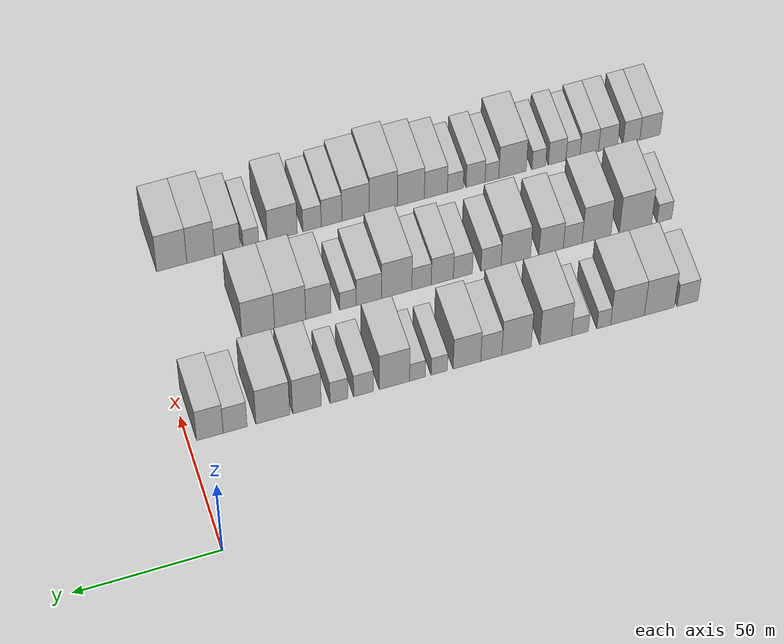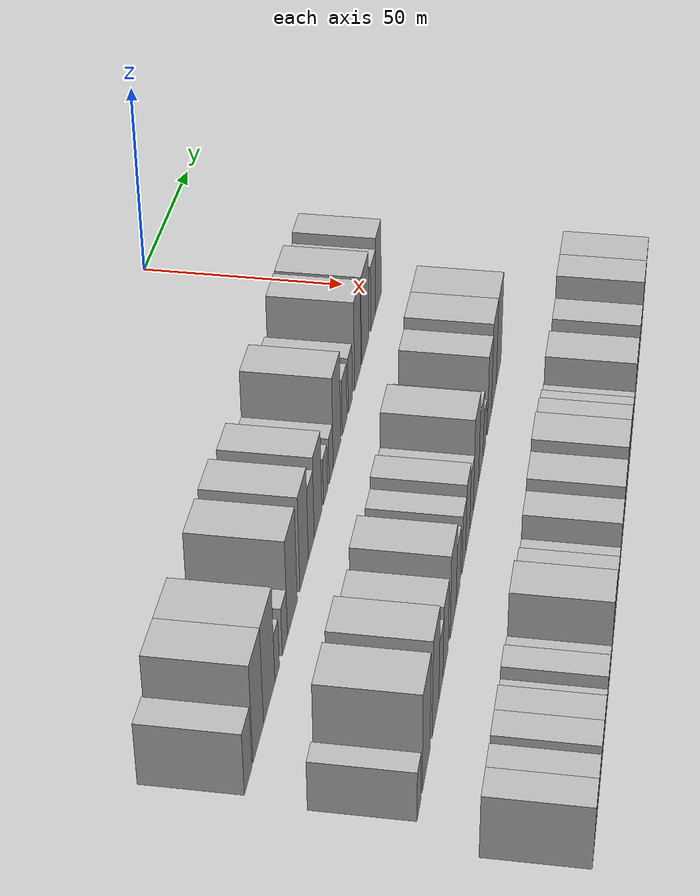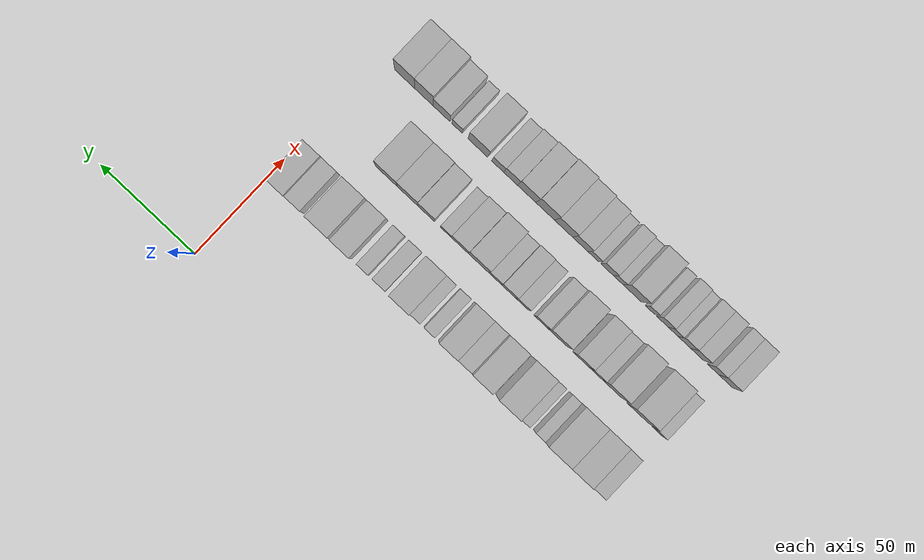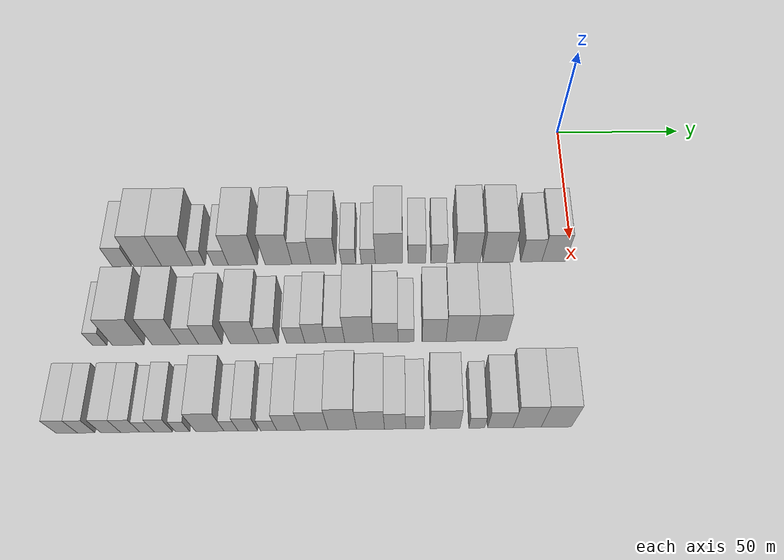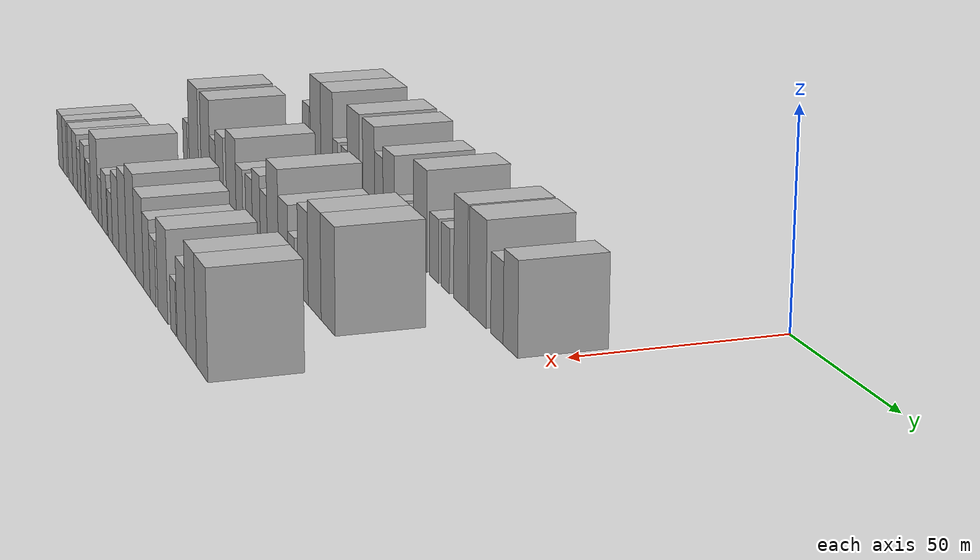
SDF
<sdf version="1.6">
 <world name="default">
  <model name="building_21">
   <static>1</static>
   <pose>50.0000 -172.4072 0 0.000000 0.000000 0.000000</pose>
   <link name="link">
    <pose>0 0 7.50 0 0 0</pose>
    <collision name="collision"><geometry><box><size>20.0000 7.2296 15.0000</size></box></geometry></collision>
    <visual name="visual">
     <cast_shadows>0</cast_shadows>
     <geometry><box><size>20.0000 7.2296 15.0000</size></box></geometry>
     <material>
      <script>
       <uri>model://HANNAS_wall/materials/scripts</uri>
       <uri>model://HANNAS_wall/materials/textures</uri>
       <name>vrc/HANNAS_wall</name>
      </script>
     </material>
    </visual>
   </link>
  </model>
  <model name="building_22">
   <static>1</static>
   <pose>50.0000 -162.5162 0 0.000000 0.000000 0.000000</pose>
   <link name="link">
    <pose>0 0 12.00 0 0 0</pose>
    <collision name="collision"><geometry><box><size>20.0000 10.5525 24.0000</size></box></geometry></collision>
    <visual name="visual">
     <cast_shadows>0</cast_shadows>
     <geometry><box><size>20.0000 10.5525 24.0000</size></box></geometry>
     <material>
      <script>
       <uri>model://HANNAS_wall/materials/scripts</uri>
       <uri>model://HANNAS_wall/materials/textures</uri>
       <name>vrc/HANNAS_wall</name>
      </script>
     </material>
    </visual>
   </link>
  </model>
  <model name="building_23">
   <static>1</static>
   <pose>50.0000 -151.3378 0 0.000000 0.000000 0.000000</pose>
   <link name="link">
    <pose>0 0 12.00 0 0 0</pose>
    <collision name="collision"><geometry><box><size>20.0000 11.8043 24.0000</size></box></geometry></collision>
    <visual name="visual">
     <cast_shadows>0</cast_shadows>
     <geometry><box><size>20.0000 11.8043 24.0000</size></box></geometry>
     <material>
      <script>
       <uri>model://HANNAS_wall/materials/scripts</uri>
       <uri>model://HANNAS_wall/materials/textures</uri>
       <name>vrc/HANNAS_wall</name>
      </script>
     </material>
    </visual>
   </link>
  </model>
  <model name="building_24">
   <static>1</static>
   <pose>50.0000 -143.0119 0 0.000000 0.000000 0.000000</pose>
   <link name="link">
    <pose>0 0 6.00 0 0 0</pose>
    <collision name="collision"><geometry><box><size>20.0000 4.8476 12.0000</size></box></geometry></collision>
    <visual name="visual">
     <cast_shadows>0</cast_shadows>
     <geometry><box><size>20.0000 4.8476 12.0000</size></box></geometry>
     <material>
      <script>
       <uri>model://HANNAS_wall/materials/scripts</uri>
       <uri>model://HANNAS_wall/materials/textures</uri>
       <name>vrc/HANNAS_wall</name>
      </script>
     </material>
    </visual>
   </link>
  </model>
  <model name="building_25">
   <static>1</static>
   <pose>50.0000 -134.6593 0 0.000000 0.000000 0.000000</pose>
   <link name="link">
    <pose>0 0 6.00 0 0 0</pose>
    <collision name="collision"><geometry><box><size>20.0000 5.8576 12.0000</size></box></geometry></collision>
    <visual name="visual">
     <cast_shadows>0</cast_shadows>
     <geometry><box><size>20.0000 5.8576 12.0000</size></box></geometry>
     <material>
      <script>
       <uri>model://HANNAS_wall/materials/scripts</uri>
       <uri>model://HANNAS_wall/materials/textures</uri>
       <name>vrc/HANNAS_wall</name>
      </script>
     </material>
    </visual>
   </link>
  </model>
  <model name="building_26">
   <static>1</static>
   <pose>50.0000 -126.2061 0 0.000000 0.000000 0.000000</pose>
   <link name="link">
    <pose>0 0 12.00 0 0 0</pose>
    <collision name="collision"><geometry><box><size>20.0000 11.0488 24.0000</size></box></geometry></collision>
    <visual name="visual">
     <cast_shadows>0</cast_shadows>
     <geometry><box><size>20.0000 11.0488 24.0000</size></box></geometry>
     <material>
      <script>
       <uri>model://HANNAS_wall/materials/scripts</uri>
       <uri>model://HANNAS_wall/materials/textures</uri>
       <name>vrc/HANNAS_wall</name>
      </script>
     </material>
    </visual>
   </link>
  </model>
  <model name="building_27">
   <static>1</static>
   <pose>50.0000 -112.5648 0 0.000000 0.000000 0.000000</pose>
   <link name="link">
    <pose>0 0 12.00 0 0 0</pose>
    <collision name="collision"><geometry><box><size>20.0000 10.2338 24.0000</size></box></geometry></collision>
    <visual name="visual">
     <cast_shadows>0</cast_shadows>
     <geometry><box><size>20.0000 10.2338 24.0000</size></box></geometry>
     <material>
      <script>
       <uri>model://HANNAS_wall/materials/scripts</uri>
       <uri>model://HANNAS_wall/materials/textures</uri>
       <name>vrc/HANNAS_wall</name>
      </script>
     </material>
    </visual>
   </link>
  </model>
  <model name="building_28">
   <static>1</static>
   <pose>50.0000 -103.8133 0 0.000000 0.000000 0.000000</pose>
   <link name="link">
    <pose>0 0 9.00 0 0 0</pose>
    <collision name="collision"><geometry><box><size>20.0000 7.2692 18.0000</size></box></geometry></collision>
    <visual name="visual">
     <cast_shadows>0</cast_shadows>
     <geometry><box><size>20.0000 7.2692 18.0000</size></box></geometry>
     <material>
      <script>
       <uri>model://HANNAS_wall/materials/scripts</uri>
       <uri>model://HANNAS_wall/materials/textures</uri>
       <name>vrc/HANNAS_wall</name>
      </script>
     </material>
    </visual>
   </link>
  </model>
  <model name="building_29">
   <static>1</static>
   <pose>50.0000 -95.3937 0 0.000000 0.000000 0.000000</pose>
   <link name="link">
    <pose>0 0 10.50 0 0 0</pose>
    <collision name="collision"><geometry><box><size>20.0000 9.5701 21.0000</size></box></geometry></collision>
    <visual name="visual">
     <cast_shadows>0</cast_shadows>
     <geometry><box><size>20.0000 9.5701 21.0000</size></box></geometry>
     <material>
      <script>
       <uri>model://HANNAS_wall/materials/scripts</uri>
       <uri>model://HANNAS_wall/materials/textures</uri>
       <name>vrc/HANNAS_wall</name>
      </script>
     </material>
    </visual>
   </link>
  </model>
  <model name="building_30">
   <static>1</static>
   <pose>50.0000 -85.7997 0 0.000000 0.000000 0.000000</pose>
   <link name="link">
    <pose>0 0 6.00 0 0 0</pose>
    <collision name="collision"><geometry><box><size>20.0000 5.6180 12.0000</size></box></geometry></collision>
    <visual name="visual">
     <cast_shadows>0</cast_shadows>
     <geometry><box><size>20.0000 5.6180 12.0000</size></box></geometry>
     <material>
      <script>
       <uri>model://HANNAS_wall/materials/scripts</uri>
       <uri>model://HANNAS_wall/materials/textures</uri>
       <name>vrc/HANNAS_wall</name>
      </script>
     </material>
    </visual>
   </link>
  </model>
  <model name="building_31">
   <static>1</static>
   <pose>50.0000 -78.2784 0 0.000000 0.000000 0.000000</pose>
   <link name="link">
    <pose>0 0 6.00 0 0 0</pose>
    <collision name="collision"><geometry><box><size>20.0000 5.4245 12.0000</size></box></geometry></collision>
    <visual name="visual">
     <cast_shadows>0</cast_shadows>
     <geometry><box><size>20.0000 5.4245 12.0000</size></box></geometry>
     <material>
      <script>
       <uri>model://HANNAS_wall/materials/scripts</uri>
       <uri>model://HANNAS_wall/materials/textures</uri>
       <name>vrc/HANNAS_wall</name>
      </script>
     </material>
    </visual>
   </link>
  </model>
  <model name="building_32">
   <static>1</static>
   <pose>50.0000 -70.3503 0 0.000000 0.000000 0.000000</pose>
   <link name="link">
    <pose>0 0 12.00 0 0 0</pose>
    <collision name="collision"><geometry><box><size>20.0000 10.4315 24.0000</size></box></geometry></collision>
    <visual name="visual">
     <cast_shadows>0</cast_shadows>
     <geometry><box><size>20.0000 10.4315 24.0000</size></box></geometry>
     <material>
      <script>
       <uri>model://HANNAS_wall/materials/scripts</uri>
       <uri>model://HANNAS_wall/materials/textures</uri>
       <name>vrc/HANNAS_wall</name>
      </script>
     </material>
    </visual>
   </link>
  </model>
  <model name="building_33">
   <static>1</static>
   <pose>50.0000 -59.7436 0 0.000000 0.000000 0.000000</pose>
   <link name="link">
    <pose>0 0 7.50 0 0 0</pose>
    <collision name="collision"><geometry><box><size>20.0000 6.7820 15.0000</size></box></geometry></collision>
    <visual name="visual">
     <cast_shadows>0</cast_shadows>
     <geometry><box><size>20.0000 6.7820 15.0000</size></box></geometry>
     <material>
      <script>
       <uri>model://HANNAS_wall/materials/scripts</uri>
       <uri>model://HANNAS_wall/materials/textures</uri>
       <name>vrc/HANNAS_wall</name>
      </script>
     </material>
    </visual>
   </link>
  </model>
  <model name="building_34">
   <static>1</static>
   <pose>50.0000 -51.3099 0 0.000000 0.000000 0.000000</pose>
   <link name="link">
    <pose>0 0 7.50 0 0 0</pose>
    <collision name="collision"><geometry><box><size>20.0000 6.0854 15.0000</size></box></geometry></collision>
    <visual name="visual">
     <cast_shadows>0</cast_shadows>
     <geometry><box><size>20.0000 6.0854 15.0000</size></box></geometry>
     <material>
      <script>
       <uri>model://HANNAS_wall/materials/scripts</uri>
       <uri>model://HANNAS_wall/materials/textures</uri>
       <name>vrc/HANNAS_wall</name>
      </script>
     </material>
    </visual>
   </link>
  </model>
  <model name="building_35">
   <static>1</static>
   <pose>50.0000 -40.3754 0 0.000000 0.000000 0.000000</pose>
   <link name="link">
    <pose>0 0 12.00 0 0 0</pose>
    <collision name="collision"><geometry><box><size>20.0000 9.7837 24.0000</size></box></geometry></collision>
    <visual name="visual">
     <cast_shadows>0</cast_shadows>
     <geometry><box><size>20.0000 9.7837 24.0000</size></box></geometry>
     <material>
      <script>
       <uri>model://HANNAS_wall/materials/scripts</uri>
       <uri>model://HANNAS_wall/materials/textures</uri>
       <name>vrc/HANNAS_wall</name>
      </script>
     </material>
    </visual>
   </link>
  </model>
  <model name="building_36">
   <static>1</static>
   <pose>50.0000 -28.7135 0 0.000000 0.000000 0.000000</pose>
   <link name="link">
    <pose>0 0 12.00 0 0 0</pose>
    <collision name="collision"><geometry><box><size>20.0000 11.5400 24.0000</size></box></geometry></collision>
    <visual name="visual">
     <cast_shadows>0</cast_shadows>
     <geometry><box><size>20.0000 11.5400 24.0000</size></box></geometry>
     <material>
      <script>
       <uri>model://HANNAS_wall/materials/scripts</uri>
       <uri>model://HANNAS_wall/materials/textures</uri>
       <name>vrc/HANNAS_wall</name>
      </script>
     </material>
    </visual>
   </link>
  </model>
  <model name="building_37">
   <static>1</static>
   <pose>50.0000 -15.8986 0 0.000000 0.000000 0.000000</pose>
   <link name="link">
    <pose>0 0 9.00 0 0 0</pose>
    <collision name="collision"><geometry><box><size>20.0000 8.0898 18.0000</size></box></geometry></collision>
    <visual name="visual">
     <cast_shadows>0</cast_shadows>
     <geometry><box><size>20.0000 8.0898 18.0000</size></box></geometry>
     <material>
      <script>
       <uri>model://HANNAS_wall/materials/scripts</uri>
       <uri>model://HANNAS_wall/materials/textures</uri>
       <name>vrc/HANNAS_wall</name>
      </script>
     </material>
    </visual>
   </link>
  </model>
  <model name="building_38">
   <static>1</static>
   <pose>50.0000 -7.3106 0 0.000000 0.000000 0.000000</pose>
   <link name="link">
    <pose>0 0 10.50 0 0 0</pose>
    <collision name="collision"><geometry><box><size>20.0000 9.0862 21.0000</size></box></geometry></collision>
    <visual name="visual">
     <cast_shadows>0</cast_shadows>
     <geometry><box><size>20.0000 9.0862 21.0000</size></box></geometry>
     <material>
      <script>
       <uri>model://HANNAS_wall/materials/scripts</uri>
       <uri>model://HANNAS_wall/materials/textures</uri>
       <name>vrc/HANNAS_wall</name>
      </script>
     </material>
    </visual>
   </link>
  </model>
  <model name="building_96">
   <static>1</static>
   <pose>82.0000 -175.5179 0 0.000000 0.000000 0.000000</pose>
   <link name="link">
    <pose>0 0 6.00 0 0 0</pose>
    <collision name="collision"><geometry><box><size>20.0000 5.2085 12.0000</size></box></geometry></collision>
    <visual name="visual">
     <cast_shadows>0</cast_shadows>
     <geometry><box><size>20.0000 5.2085 12.0000</size></box></geometry>
     <material>
      <script>
       <uri>model://HANNAS_wall/materials/scripts</uri>
       <uri>model://HANNAS_wall/materials/textures</uri>
       <name>vrc/HANNAS_wall</name>
      </script>
     </material>
    </visual>
   </link>
  </model>
  <model name="building_97">
   <static>1</static>
   <pose>82.0000 -165.2057 0 0.000000 0.000000 0.000000</pose>
   <link name="link">
    <pose>0 0 12.00 0 0 0</pose>
    <collision name="collision"><geometry><box><size>20.0000 11.4158 24.0000</size></box></geometry></collision>
    <visual name="visual">
     <cast_shadows>0</cast_shadows>
     <geometry><box><size>20.0000 11.4158 24.0000</size></box></geometry>
     <material>
      <script>
       <uri>model://HANNAS_wall/materials/scripts</uri>
       <uri>model://HANNAS_wall/materials/textures</uri>
       <name>vrc/HANNAS_wall</name>
      </script>
     </material>
    </visual>
   </link>
  </model>
  <model name="building_98">
   <static>1</static>
   <pose>82.0000 -151.3978 0 0.000000 0.000000 0.000000</pose>
   <link name="link">
    <pose>0 0 12.00 0 0 0</pose>
    <collision name="collision"><geometry><box><size>20.0000 10.2001 24.0000</size></box></geometry></collision>
    <visual name="visual">
     <cast_shadows>0</cast_shadows>
     <geometry><box><size>20.0000 10.2001 24.0000</size></box></geometry>
     <material>
      <script>
       <uri>model://HANNAS_wall/materials/scripts</uri>
       <uri>model://HANNAS_wall/materials/textures</uri>
       <name>vrc/HANNAS_wall</name>
      </script>
     </material>
    </visual>
   </link>
  </model>
  <model name="building_99">
   <static>1</static>
   <pose>82.0000 -142.9833 0 0.000000 0.000000 0.000000</pose>
   <link name="link">
    <pose>0 0 7.50 0 0 0</pose>
    <collision name="collision"><geometry><box><size>20.0000 6.6288 15.0000</size></box></geometry></collision>
    <visual name="visual">
     <cast_shadows>0</cast_shadows>
     <geometry><box><size>20.0000 6.6288 15.0000</size></box></geometry>
     <material>
      <script>
       <uri>model://HANNAS_wall/materials/scripts</uri>
       <uri>model://HANNAS_wall/materials/textures</uri>
       <name>vrc/HANNAS_wall</name>
      </script>
     </material>
    </visual>
   </link>
  </model>
  <model name="building_100">
   <static>1</static>
   <pose>82.0000 -135.3610 0 0.000000 0.000000 0.000000</pose>
   <link name="link">
    <pose>0 0 9.00 0 0 0</pose>
    <collision name="collision"><geometry><box><size>20.0000 8.6160 18.0000</size></box></geometry></collision>
    <visual name="visual">
     <cast_shadows>0</cast_shadows>
     <geometry><box><size>20.0000 8.6160 18.0000</size></box></geometry>
     <material>
      <script>
       <uri>model://HANNAS_wall/materials/scripts</uri>
       <uri>model://HANNAS_wall/materials/textures</uri>
       <name>vrc/HANNAS_wall</name>
      </script>
     </material>
    </visual>
   </link>
  </model>
  <model name="building_101">
   <static>1</static>
   <pose>82.0000 -122.8809 0 0.000000 0.000000 0.000000</pose>
   <link name="link">
    <pose>0 0 10.50 0 0 0</pose>
    <collision name="collision"><geometry><box><size>20.0000 10.3441 21.0000</size></box></geometry></collision>
    <visual name="visual">
     <cast_shadows>0</cast_shadows>
     <geometry><box><size>20.0000 10.3441 21.0000</size></box></geometry>
     <material>
      <script>
       <uri>model://HANNAS_wall/materials/scripts</uri>
       <uri>model://HANNAS_wall/materials/textures</uri>
       <name>vrc/HANNAS_wall</name>
      </script>
     </material>
    </visual>
   </link>
  </model>
  <model name="building_102">
   <static>1</static>
   <pose>82.0000 -114.1789 0 0.000000 0.000000 0.000000</pose>
   <link name="link">
    <pose>0 0 7.50 0 0 0</pose>
    <collision name="collision"><geometry><box><size>20.0000 7.0599 15.0000</size></box></geometry></collision>
    <visual name="visual">
     <cast_shadows>0</cast_shadows>
     <geometry><box><size>20.0000 7.0599 15.0000</size></box></geometry>
     <material>
      <script>
       <uri>model://HANNAS_wall/materials/scripts</uri>
       <uri>model://HANNAS_wall/materials/textures</uri>
       <name>vrc/HANNAS_wall</name>
      </script>
     </material>
    </visual>
   </link>
  </model>
  <model name="building_103">
   <static>1</static>
   <pose>82.0000 -104.3162 0 0.000000 0.000000 0.000000</pose>
   <link name="link">
    <pose>0 0 7.50 0 0 0</pose>
    <collision name="collision"><geometry><box><size>20.0000 6.6655 15.0000</size></box></geometry></collision>
    <visual name="visual">
     <cast_shadows>0</cast_shadows>
     <geometry><box><size>20.0000 6.6655 15.0000</size></box></geometry>
     <material>
      <script>
       <uri>model://HANNAS_wall/materials/scripts</uri>
       <uri>model://HANNAS_wall/materials/textures</uri>
       <name>vrc/HANNAS_wall</name>
      </script>
     </material>
    </visual>
   </link>
  </model>
  <model name="building_104">
   <static>1</static>
   <pose>82.0000 -97.1125 0 0.000000 0.000000 0.000000</pose>
   <link name="link">
    <pose>0 0 9.00 0 0 0</pose>
    <collision name="collision"><geometry><box><size>20.0000 7.7419 18.0000</size></box></geometry></collision>
    <visual name="visual">
     <cast_shadows>0</cast_shadows>
     <geometry><box><size>20.0000 7.7419 18.0000</size></box></geometry>
     <material>
      <script>
       <uri>model://HANNAS_wall/materials/scripts</uri>
       <uri>model://HANNAS_wall/materials/textures</uri>
       <name>vrc/HANNAS_wall</name>
      </script>
     </material>
    </visual>
   </link>
  </model>
  <model name="building_105">
   <static>1</static>
   <pose>82.0000 -89.8663 0 0.000000 0.000000 0.000000</pose>
   <link name="link">
    <pose>0 0 7.50 0 0 0</pose>
    <collision name="collision"><geometry><box><size>20.0000 6.7505 15.0000</size></box></geometry></collision>
    <visual name="visual">
     <cast_shadows>0</cast_shadows>
     <geometry><box><size>20.0000 6.7505 15.0000</size></box></geometry>
     <material>
      <script>
       <uri>model://HANNAS_wall/materials/scripts</uri>
       <uri>model://HANNAS_wall/materials/textures</uri>
       <name>vrc/HANNAS_wall</name>
      </script>
     </material>
    </visual>
   </link>
  </model>
  <model name="building_106">
   <static>1</static>
   <pose>82.0000 -81.2178 0 0.000000 0.000000 0.000000</pose>
   <link name="link">
    <pose>0 0 12.00 0 0 0</pose>
    <collision name="collision"><geometry><box><size>20.0000 10.5465 24.0000</size></box></geometry></collision>
    <visual name="visual">
     <cast_shadows>0</cast_shadows>
     <geometry><box><size>20.0000 10.5465 24.0000</size></box></geometry>
     <material>
      <script>
       <uri>model://HANNAS_wall/materials/scripts</uri>
       <uri>model://HANNAS_wall/materials/textures</uri>
       <name>vrc/HANNAS_wall</name>
      </script>
     </material>
    </visual>
   </link>
  </model>
  <model name="building_107">
   <static>1</static>
   <pose>82.0000 -71.5126 0 0.000000 0.000000 0.000000</pose>
   <link name="link">
    <pose>0 0 9.00 0 0 0</pose>
    <collision name="collision"><geometry><box><size>20.0000 8.8638 18.0000</size></box></geometry></collision>
    <visual name="visual">
     <cast_shadows>0</cast_shadows>
     <geometry><box><size>20.0000 8.8638 18.0000</size></box></geometry>
     <material>
      <script>
       <uri>model://HANNAS_wall/materials/scripts</uri>
       <uri>model://HANNAS_wall/materials/textures</uri>
       <name>vrc/HANNAS_wall</name>
      </script>
     </material>
    </visual>
   </link>
  </model>
  <model name="building_108">
   <static>1</static>
   <pose>82.0000 -64.2153 0 0.000000 0.000000 0.000000</pose>
   <link name="link">
    <pose>0 0 6.00 0 0 0</pose>
    <collision name="collision"><geometry><box><size>20.0000 5.7308 12.0000</size></box></geometry></collision>
    <visual name="visual">
     <cast_shadows>0</cast_shadows>
     <geometry><box><size>20.0000 5.7308 12.0000</size></box></geometry>
     <material>
      <script>
       <uri>model://HANNAS_wall/materials/scripts</uri>
       <uri>model://HANNAS_wall/materials/textures</uri>
       <name>vrc/HANNAS_wall</name>
      </script>
     </material>
    </visual>
   </link>
  </model>
  <model name="building_109">
   <static>1</static>
   <pose>82.0000 -53.9802 0 0.000000 0.000000 0.000000</pose>
   <link name="link">
    <pose>0 0 10.50 0 0 0</pose>
    <collision name="collision"><geometry><box><size>20.0000 8.7395 21.0000</size></box></geometry></collision>
    <visual name="visual">
     <cast_shadows>0</cast_shadows>
     <geometry><box><size>20.0000 8.7395 21.0000</size></box></geometry>
     <material>
      <script>
       <uri>model://HANNAS_wall/materials/scripts</uri>
       <uri>model://HANNAS_wall/materials/textures</uri>
       <name>vrc/HANNAS_wall</name>
      </script>
     </material>
    </visual>
   </link>
  </model>
  <model name="building_110">
   <static>1</static>
   <pose>82.0000 -44.2321 0 0.000000 0.000000 0.000000</pose>
   <link name="link">
    <pose>0 0 12.00 0 0 0</pose>
    <collision name="collision"><geometry><box><size>20.0000 10.7567 24.0000</size></box></geometry></collision>
    <visual name="visual">
     <cast_shadows>0</cast_shadows>
     <geometry><box><size>20.0000 10.7567 24.0000</size></box></geometry>
     <material>
      <script>
       <uri>model://HANNAS_wall/materials/scripts</uri>
       <uri>model://HANNAS_wall/materials/textures</uri>
       <name>vrc/HANNAS_wall</name>
      </script>
     </material>
    </visual>
   </link>
  </model>
  <model name="building_111">
   <static>1</static>
   <pose>82.0000 -33.1777 0 0.000000 0.000000 0.000000</pose>
   <link name="link">
    <pose>0 0 12.00 0 0 0</pose>
    <collision name="collision"><geometry><box><size>20.0000 11.3520 24.0000</size></box></geometry></collision>
    <visual name="visual">
     <cast_shadows>0</cast_shadows>
     <geometry><box><size>20.0000 11.3520 24.0000</size></box></geometry>
     <material>
      <script>
       <uri>model://HANNAS_wall/materials/scripts</uri>
       <uri>model://HANNAS_wall/materials/textures</uri>
       <name>vrc/HANNAS_wall</name>
      </script>
     </material>
    </visual>
   </link>
  </model>
  <model name="building_164">
   <static>1</static>
   <pose>114.0000 -181.5832 0 0.000000 0.000000 0.000000</pose>
   <link name="link">
    <pose>0 0 7.50 0 0 0</pose>
    <collision name="collision"><geometry><box><size>20.0000 7.3099 15.0000</size></box></geometry></collision>
    <visual name="visual">
     <cast_shadows>0</cast_shadows>
     <geometry><box><size>20.0000 7.3099 15.0000</size></box></geometry>
     <material>
      <script>
       <uri>model://HANNAS_wall/materials/scripts</uri>
       <uri>model://HANNAS_wall/materials/textures</uri>
       <name>vrc/HANNAS_wall</name>
      </script>
     </material>
    </visual>
   </link>
  </model>
  <model name="building_165">
   <static>1</static>
   <pose>114.0000 -174.9154 0 0.000000 0.000000 0.000000</pose>
   <link name="link">
    <pose>0 0 7.50 0 0 0</pose>
    <collision name="collision"><geometry><box><size>20.0000 6.0257 15.0000</size></box></geometry></collision>
    <visual name="visual">
     <cast_shadows>0</cast_shadows>
     <geometry><box><size>20.0000 6.0257 15.0000</size></box></geometry>
     <material>
      <script>
       <uri>model://HANNAS_wall/materials/scripts</uri>
       <uri>model://HANNAS_wall/materials/textures</uri>
       <name>vrc/HANNAS_wall</name>
      </script>
     </material>
    </visual>
   </link>
  </model>
  <model name="building_166">
   <static>1</static>
   <pose>114.0000 -166.4858 0 0.000000 0.000000 0.000000</pose>
   <link name="link">
    <pose>0 0 7.50 0 0 0</pose>
    <collision name="collision"><geometry><box><size>20.0000 6.8336 15.0000</size></box></geometry></collision>
    <visual name="visual">
     <cast_shadows>0</cast_shadows>
     <geometry><box><size>20.0000 6.8336 15.0000</size></box></geometry>
     <material>
      <script>
       <uri>model://HANNAS_wall/materials/scripts</uri>
       <uri>model://HANNAS_wall/materials/textures</uri>
       <name>vrc/HANNAS_wall</name>
      </script>
     </material>
    </visual>
   </link>
  </model>
  <model name="building_167">
   <static>1</static>
   <pose>114.0000 -159.7394 0 0.000000 0.000000 0.000000</pose>
   <link name="link">
    <pose>0 0 7.50 0 0 0</pose>
    <collision name="collision"><geometry><box><size>20.0000 6.6592 15.0000</size></box></geometry></collision>
    <visual name="visual">
     <cast_shadows>0</cast_shadows>
     <geometry><box><size>20.0000 6.6592 15.0000</size></box></geometry>
     <material>
      <script>
       <uri>model://HANNAS_wall/materials/scripts</uri>
       <uri>model://HANNAS_wall/materials/textures</uri>
       <name>vrc/HANNAS_wall</name>
      </script>
     </material>
    </visual>
   </link>
  </model>
  <model name="building_168">
   <static>1</static>
   <pose>114.0000 -153.9036 0 0.000000 0.000000 0.000000</pose>
   <link name="link">
    <pose>0 0 6.00 0 0 0</pose>
    <collision name="collision"><geometry><box><size>20.0000 5.0124 12.0000</size></box></geometry></collision>
    <visual name="visual">
     <cast_shadows>0</cast_shadows>
     <geometry><box><size>20.0000 5.0124 12.0000</size></box></geometry>
     <material>
      <script>
       <uri>model://HANNAS_wall/materials/scripts</uri>
       <uri>model://HANNAS_wall/materials/textures</uri>
       <name>vrc/HANNAS_wall</name>
      </script>
     </material>
    </visual>
   </link>
  </model>
  <model name="building_169">
   <static>1</static>
   <pose>114.0000 -148.2708 0 0.000000 0.000000 0.000000</pose>
   <link name="link">
    <pose>0 0 7.50 0 0 0</pose>
    <collision name="collision"><geometry><box><size>20.0000 6.2532 15.0000</size></box></geometry></collision>
    <visual name="visual">
     <cast_shadows>0</cast_shadows>
     <geometry><box><size>20.0000 6.2532 15.0000</size></box></geometry>
     <material>
      <script>
       <uri>model://HANNAS_wall/materials/scripts</uri>
       <uri>model://HANNAS_wall/materials/textures</uri>
       <name>vrc/HANNAS_wall</name>
      </script>
     </material>
    </visual>
   </link>
  </model>
  <model name="building_170">
   <static>1</static>
   <pose>114.0000 -141.6738 0 0.000000 0.000000 0.000000</pose>
   <link name="link">
    <pose>0 0 6.00 0 0 0</pose>
    <collision name="collision"><geometry><box><size>20.0000 4.9408 12.0000</size></box></geometry></collision>
    <visual name="visual">
     <cast_shadows>0</cast_shadows>
     <geometry><box><size>20.0000 4.9408 12.0000</size></box></geometry>
     <material>
      <script>
       <uri>model://HANNAS_wall/materials/scripts</uri>
       <uri>model://HANNAS_wall/materials/textures</uri>
       <name>vrc/HANNAS_wall</name>
      </script>
     </material>
    </visual>
   </link>
  </model>
  <model name="building_171">
   <static>1</static>
   <pose>114.0000 -132.3051 0 0.000000 0.000000 0.000000</pose>
   <link name="link">
    <pose>0 0 10.50 0 0 0</pose>
    <collision name="collision"><geometry><box><size>20.0000 9.7965 21.0000</size></box></geometry></collision>
    <visual name="visual">
     <cast_shadows>0</cast_shadows>
     <geometry><box><size>20.0000 9.7965 21.0000</size></box></geometry>
     <material>
      <script>
       <uri>model://HANNAS_wall/materials/scripts</uri>
       <uri>model://HANNAS_wall/materials/textures</uri>
       <name>vrc/HANNAS_wall</name>
      </script>
     </material>
    </visual>
   </link>
  </model>
  <model name="building_172">
   <static>1</static>
   <pose>114.0000 -124.9682 0 0.000000 0.000000 0.000000</pose>
   <link name="link">
    <pose>0 0 6.00 0 0 0</pose>
    <collision name="collision"><geometry><box><size>20.0000 4.8774 12.0000</size></box></geometry></collision>
    <visual name="visual">
     <cast_shadows>0</cast_shadows>
     <geometry><box><size>20.0000 4.8774 12.0000</size></box></geometry>
     <material>
      <script>
       <uri>model://HANNAS_wall/materials/scripts</uri>
       <uri>model://HANNAS_wall/materials/textures</uri>
       <name>vrc/HANNAS_wall</name>
      </script>
     </material>
    </visual>
   </link>
  </model>
  <model name="building_173">
   <static>1</static>
   <pose>114.0000 -119.1624 0 0.000000 0.000000 0.000000</pose>
   <link name="link">
    <pose>0 0 7.50 0 0 0</pose>
    <collision name="collision"><geometry><box><size>20.0000 6.7342 15.0000</size></box></geometry></collision>
    <visual name="visual">
     <cast_shadows>0</cast_shadows>
     <geometry><box><size>20.0000 6.7342 15.0000</size></box></geometry>
     <material>
      <script>
       <uri>model://HANNAS_wall/materials/scripts</uri>
       <uri>model://HANNAS_wall/materials/textures</uri>
       <name>vrc/HANNAS_wall</name>
      </script>
     </material>
    </visual>
   </link>
  </model>
  <model name="building_174">
   <static>1</static>
   <pose>114.0000 -111.9767 0 0.000000 0.000000 0.000000</pose>
   <link name="link">
    <pose>0 0 6.00 0 0 0</pose>
    <collision name="collision"><geometry><box><size>20.0000 5.6371 12.0000</size></box></geometry></collision>
    <visual name="visual">
     <cast_shadows>0</cast_shadows>
     <geometry><box><size>20.0000 5.6371 12.0000</size></box></geometry>
     <material>
      <script>
       <uri>model://HANNAS_wall/materials/scripts</uri>
       <uri>model://HANNAS_wall/materials/textures</uri>
       <name>vrc/HANNAS_wall</name>
      </script>
     </material>
    </visual>
   </link>
  </model>
  <model name="building_175">
   <static>1</static>
   <pose>114.0000 -105.0793 0 0.000000 0.000000 0.000000</pose>
   <link name="link">
    <pose>0 0 9.00 0 0 0</pose>
    <collision name="collision"><geometry><box><size>20.0000 8.1579 18.0000</size></box></geometry></collision>
    <visual name="visual">
     <cast_shadows>0</cast_shadows>
     <geometry><box><size>20.0000 8.1579 18.0000</size></box></geometry>
     <material>
      <script>
       <uri>model://HANNAS_wall/materials/scripts</uri>
       <uri>model://HANNAS_wall/materials/textures</uri>
       <name>vrc/HANNAS_wall</name>
      </script>
     </material>
    </visual>
   </link>
  </model>
  <model name="building_176">
   <static>1</static>
   <pose>114.0000 -96.2621 0 0.000000 0.000000 0.000000</pose>
   <link name="link">
    <pose>0 0 10.50 0 0 0</pose>
    <collision name="collision"><geometry><box><size>20.0000 9.4766 21.0000</size></box></geometry></collision>
    <visual name="visual">
     <cast_shadows>0</cast_shadows>
     <geometry><box><size>20.0000 9.4766 21.0000</size></box></geometry>
     <material>
      <script>
       <uri>model://HANNAS_wall/materials/scripts</uri>
       <uri>model://HANNAS_wall/materials/textures</uri>
       <name>vrc/HANNAS_wall</name>
      </script>
     </material>
    </visual>
   </link>
  </model>
  <model name="building_177">
   <static>1</static>
   <pose>114.0000 -86.5657 0 0.000000 0.000000 0.000000</pose>
   <link name="link">
    <pose>0 0 12.00 0 0 0</pose>
    <collision name="collision"><geometry><box><size>20.0000 9.9162 24.0000</size></box></geometry></collision>
    <visual name="visual">
     <cast_shadows>0</cast_shadows>
     <geometry><box><size>20.0000 9.9162 24.0000</size></box></geometry>
     <material>
      <script>
       <uri>model://HANNAS_wall/materials/scripts</uri>
       <uri>model://HANNAS_wall/materials/textures</uri>
       <name>vrc/HANNAS_wall</name>
      </script>
     </material>
    </visual>
   </link>
  </model>
  <model name="building_178">
   <static>1</static>
   <pose>114.0000 -76.7945 0 0.000000 0.000000 0.000000</pose>
   <link name="link">
    <pose>0 0 10.50 0 0 0</pose>
    <collision name="collision"><geometry><box><size>20.0000 9.6263 21.0000</size></box></geometry></collision>
    <visual name="visual">
     <cast_shadows>0</cast_shadows>
     <geometry><box><size>20.0000 9.6263 21.0000</size></box></geometry>
     <material>
      <script>
       <uri>model://HANNAS_wall/materials/scripts</uri>
       <uri>model://HANNAS_wall/materials/textures</uri>
       <name>vrc/HANNAS_wall</name>
      </script>
     </material>
    </visual>
   </link>
  </model>
  <model name="building_179">
   <static>1</static>
   <pose>114.0000 -68.3432 0 0.000000 0.000000 0.000000</pose>
   <link name="link">
    <pose>0 0 9.00 0 0 0</pose>
    <collision name="collision"><geometry><box><size>20.0000 7.2764 18.0000</size></box></geometry></collision>
    <visual name="visual">
     <cast_shadows>0</cast_shadows>
     <geometry><box><size>20.0000 7.2764 18.0000</size></box></geometry>
     <material>
      <script>
       <uri>model://HANNAS_wall/materials/scripts</uri>
       <uri>model://HANNAS_wall/materials/textures</uri>
       <name>vrc/HANNAS_wall</name>
      </script>
     </material>
    </visual>
   </link>
  </model>
  <model name="building_180">
   <static>1</static>
   <pose>114.0000 -61.4934 0 0.000000 0.000000 0.000000</pose>
   <link name="link">
    <pose>0 0 7.50 0 0 0</pose>
    <collision name="collision"><geometry><box><size>20.0000 6.4231 15.0000</size></box></geometry></collision>
    <visual name="visual">
     <cast_shadows>0</cast_shadows>
     <geometry><box><size>20.0000 6.4231 15.0000</size></box></geometry>
     <material>
      <script>
       <uri>model://HANNAS_wall/materials/scripts</uri>
       <uri>model://HANNAS_wall/materials/textures</uri>
       <name>vrc/HANNAS_wall</name>
      </script>
     </material>
    </visual>
   </link>
  </model>
  <model name="building_181">
   <static>1</static>
   <pose>114.0000 -51.0650 0 0.000000 0.000000 0.000000</pose>
   <link name="link">
    <pose>0 0 10.50 0 0 0</pose>
    <collision name="collision"><geometry><box><size>20.0000 10.4337 21.0000</size></box></geometry></collision>
    <visual name="visual">
     <cast_shadows>0</cast_shadows>
     <geometry><box><size>20.0000 10.4337 21.0000</size></box></geometry>
     <material>
      <script>
       <uri>model://HANNAS_wall/materials/scripts</uri>
       <uri>model://HANNAS_wall/materials/textures</uri>
       <name>vrc/HANNAS_wall</name>
      </script>
     </material>
    </visual>
   </link>
  </model>
  <model name="building_182">
   <static>1</static>
   <pose>114.0000 -40.0969 0 0.000000 0.000000 0.000000</pose>
   <link name="link">
    <pose>0 0 6.00 0 0 0</pose>
    <collision name="collision"><geometry><box><size>20.0000 5.5025 12.0000</size></box></geometry></collision>
    <visual name="visual">
     <cast_shadows>0</cast_shadows>
     <geometry><box><size>20.0000 5.5025 12.0000</size></box></geometry>
     <material>
      <script>
       <uri>model://HANNAS_wall/materials/scripts</uri>
       <uri>model://HANNAS_wall/materials/textures</uri>
       <name>vrc/HANNAS_wall</name>
      </script>
     </material>
    </visual>
   </link>
  </model>
  <model name="building_183">
   <static>1</static>
   <pose>114.0000 -31.8915 0 0.000000 0.000000 0.000000</pose>
   <link name="link">
    <pose>0 0 9.00 0 0 0</pose>
    <collision name="collision"><geometry><box><size>20.0000 8.9082 18.0000</size></box></geometry></collision>
    <visual name="visual">
     <cast_shadows>0</cast_shadows>
     <geometry><box><size>20.0000 8.9082 18.0000</size></box></geometry>
     <material>
      <script>
       <uri>model://HANNAS_wall/materials/scripts</uri>
       <uri>model://HANNAS_wall/materials/textures</uri>
       <name>vrc/HANNAS_wall</name>
      </script>
     </material>
    </visual>
   </link>
  </model>
  <model name="building_184">
   <static>1</static>
   <pose>114.0000 -22.6131 0 0.000000 0.000000 0.000000</pose>
   <link name="link">
    <pose>0 0 12.00 0 0 0</pose>
    <collision name="collision"><geometry><box><size>20.0000 9.6487 24.0000</size></box></geometry></collision>
    <visual name="visual">
     <cast_shadows>0</cast_shadows>
     <geometry><box><size>20.0000 9.6487 24.0000</size></box></geometry>
     <material>
      <script>
       <uri>model://HANNAS_wall/materials/scripts</uri>
       <uri>model://HANNAS_wall/materials/textures</uri>
       <name>vrc/HANNAS_wall</name>
      </script>
     </material>
    </visual>
   </link>
  </model>
  <model name="building_185">
   <static>1</static>
   <pose>114.0000 -12.5185 0 0.000000 0.000000 0.000000</pose>
   <link name="link">
    <pose>0 0 12.00 0 0 0</pose>
    <collision name="collision"><geometry><box><size>20.0000 10.5403 24.0000</size></box></geometry></collision>
    <visual name="visual">
     <cast_shadows>0</cast_shadows>
     <geometry><box><size>20.0000 10.5403 24.0000</size></box></geometry>
     <material>
      <script>
       <uri>model://HANNAS_wall/materials/scripts</uri>
       <uri>model://HANNAS_wall/materials/textures</uri>
       <name>vrc/HANNAS_wall</name>
      </script>
     </material>
    </visual>
   </link>
  </model>
 </world>
</sdf>
